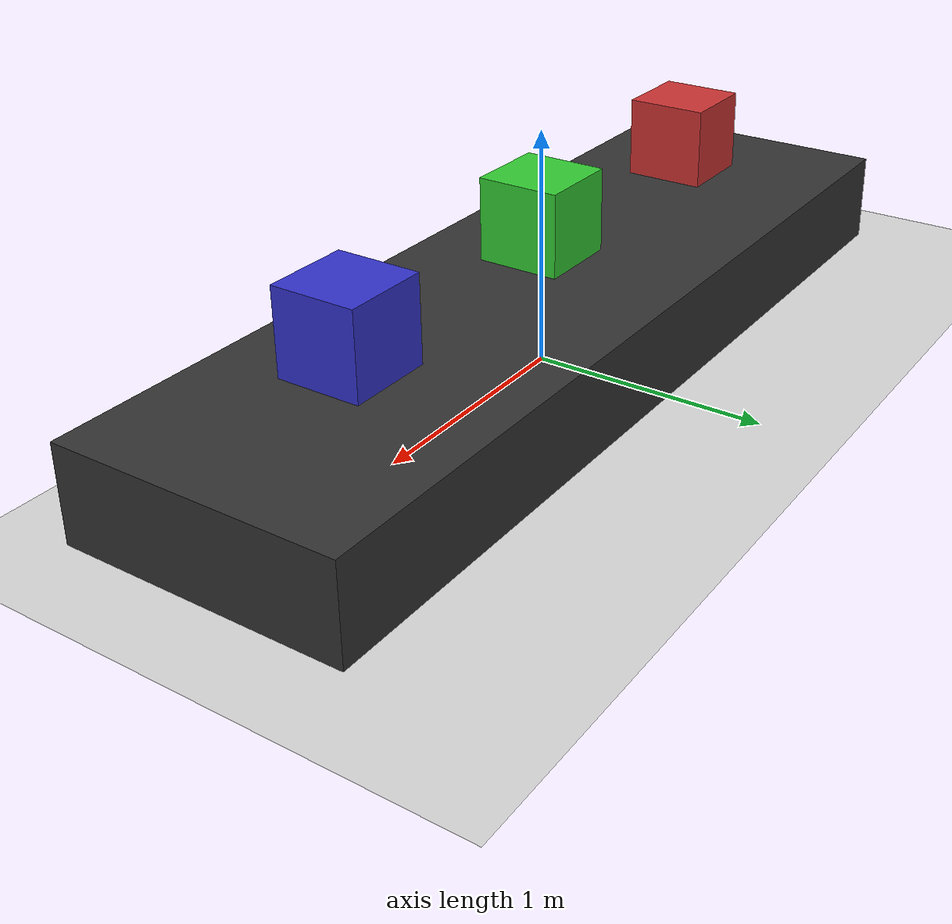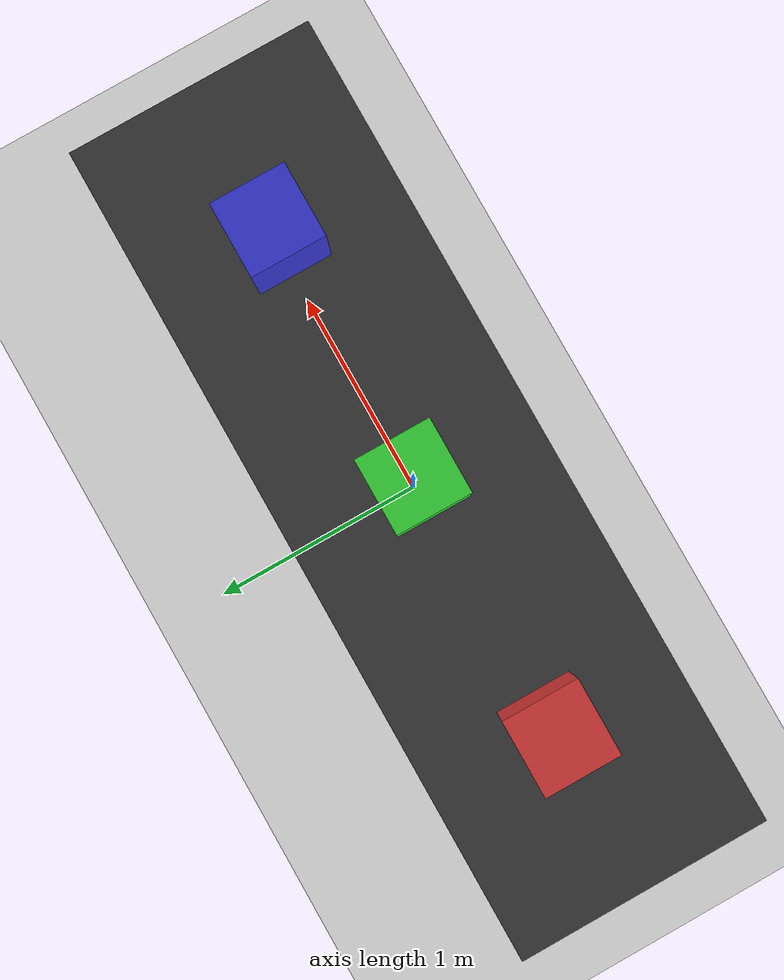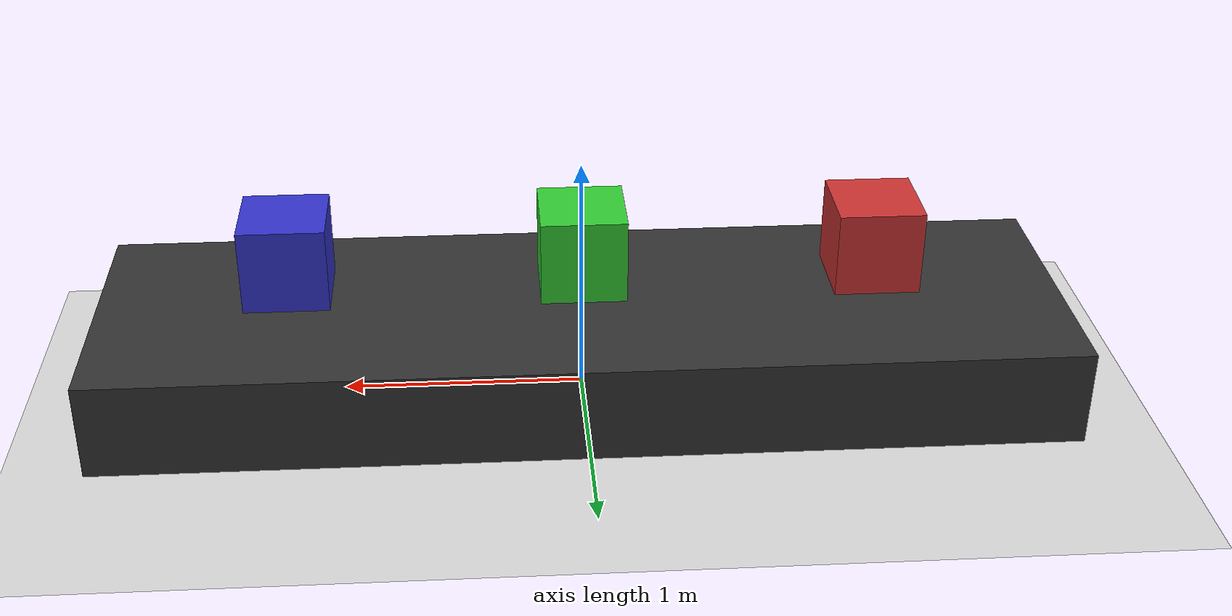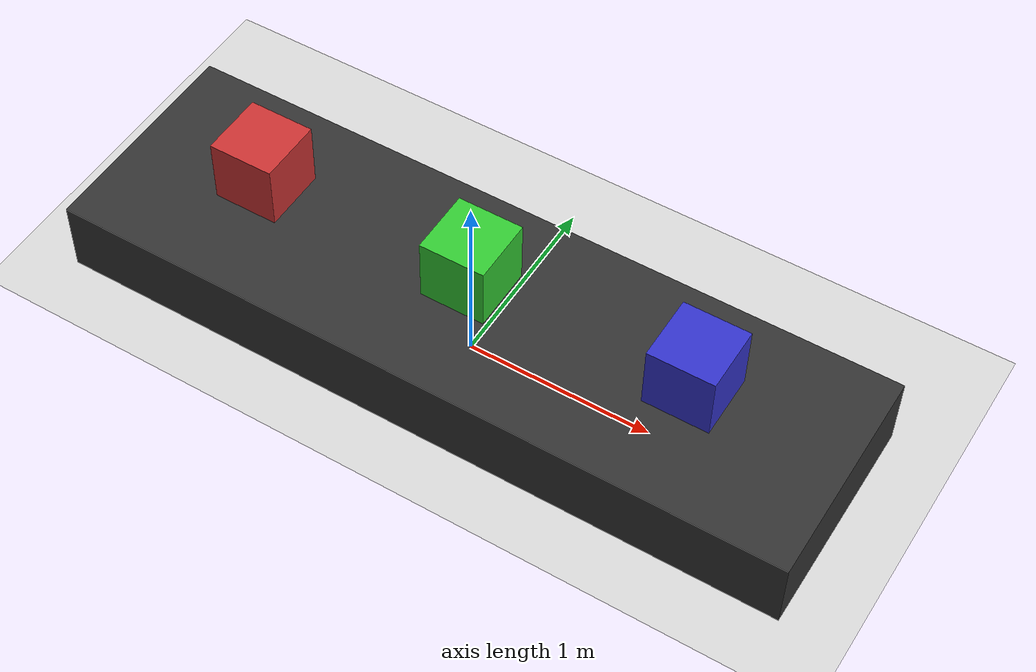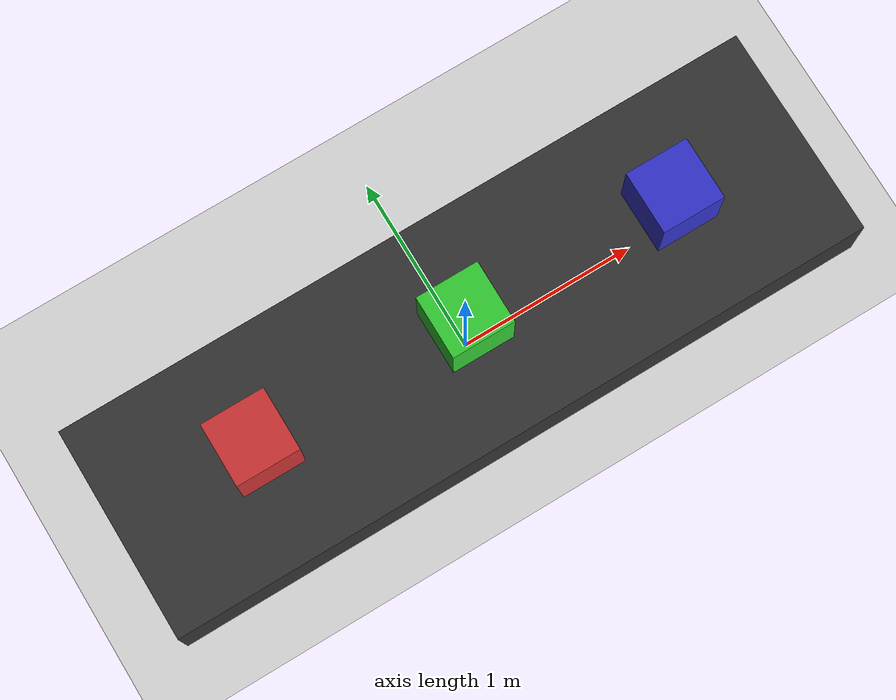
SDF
<?xml version="1.0" ?>
<sdf version="1.8">
  <world name="factory_world">
    <plugin filename="gz-sim-physics-system" name="gz::sim::systems::Physics"/>
    <plugin filename="gz-sim-scene-broadcaster-system" name="gz::sim::systems::SceneBroadcaster"/>
    <plugin filename="gz-sim-user-commands-system" name="gz::sim::systems::UserCommands"/>

    <light name="sun" type="directional">
      <pose>0 0 10 0 0 0</pose>
      <diffuse>0.9 0.9 0.9 1</diffuse>
      <specular>0.2 0.2 0.2 1</specular>
      <direction>-0.5 0.1 -0.9</direction>
    </light>

    <model name="ground_plane">
      <static>true</static>
      <link name="link">
        <collision name="collision">
          <geometry>
            <plane>
              <normal>0 0 1</normal>
              <size>20 20</size>
            </plane>
          </geometry>
        </collision>
        <visual name="visual">
          <geometry>
            <plane>
              <normal>0 0 1</normal>
              <size>20 20</size>
            </plane>
          </geometry>
          <material>
            <ambient>0.85 0.85 0.85 1</ambient>
            <diffuse>0.85 0.85 0.85 1</diffuse>
          </material>
        </visual>
      </link>
    </model>

    <model name="conveyor_platform">
      <static>true</static>
      <pose>0 0 0.2 0 0 0</pose>
      <link name="link">
        <collision name="collision">
          <geometry>
            <box>
              <size>4.0 1.2 0.4</size>
            </box>
          </geometry>
        </collision>
        <visual name="visual">
          <geometry>
            <box>
              <size>4.0 1.2 0.4</size>
            </box>
          </geometry>
          <material>
            <ambient>0.2 0.2 0.2 1</ambient>
            <diffuse>0.2 0.2 0.2 1</diffuse>
          </material>
        </visual>
      </link>
    </model>

    <model name="box_1">
      <static>false</static>
      <pose>-1.2 0 0.65 0 0 0</pose>
      <link name="link">
        <inertial>
          <mass>0.5</mass>
          <inertia>
            <ixx>0.02</ixx>
            <iyy>0.02</iyy>
            <izz>0.02</izz>
          </inertia>
        </inertial>
        <collision name="collision">
          <geometry>
            <box>
              <size>0.35 0.35 0.35</size>
            </box>
          </geometry>
        </collision>
        <visual name="visual">
          <geometry>
            <box>
              <size>0.35 0.35 0.35</size>
            </box>
          </geometry>
          <material>
            <ambient>0.8 0.2 0.2 1</ambient>
            <diffuse>0.8 0.2 0.2 1</diffuse>
          </material>
        </visual>
      </link>
    </model>

    <model name="box_2">
      <static>false</static>
      <pose>0.0 0 0.65 0 0 0</pose>
      <link name="link">
        <inertial>
          <mass>0.5</mass>
          <inertia>
            <ixx>0.02</ixx>
            <iyy>0.02</iyy>
            <izz>0.02</izz>
          </inertia>
        </inertial>
        <collision name="collision">
          <geometry>
            <box>
              <size>0.35 0.35 0.35</size>
            </box>
          </geometry>
        </collision>
        <visual name="visual">
          <geometry>
            <box>
              <size>0.35 0.35 0.35</size>
            </box>
          </geometry>
          <material>
            <ambient>0.2 0.8 0.2 1</ambient>
            <diffuse>0.2 0.8 0.2 1</diffuse>
          </material>
        </visual>
      </link>
    </model>

    <model name="box_3">
      <static>false</static>
      <pose>1.2 0 0.65 0 0 0</pose>
      <link name="link">
        <inertial>
          <mass>0.5</mass>
          <inertia>
            <ixx>0.02</ixx>
            <iyy>0.02</iyy>
            <izz>0.02</izz>
          </inertia>
        </inertial>
        <collision name="collision">
          <geometry>
            <box>
              <size>0.35 0.35 0.35</size>
            </box>
          </geometry>
        </collision>
        <visual name="visual">
          <geometry>
            <box>
              <size>0.35 0.35 0.35</size>
            </box>
          </geometry>
          <material>
            <ambient>0.2 0.2 0.8 1</ambient>
            <diffuse>0.2 0.2 0.8 1</diffuse>
          </material>
        </visual>
      </link>
    </model>
    <plugin filename="gz-sim-sensors-system" name="gz::sim::systems::Sensors">
      <render_engine>ogre</render_engine>
    </plugin>

    <model name="overhead_camera">
      <static>true</static>
      <pose>0 0 3.5 0 1.5708 0</pose>
      <link name="camera_link">
        <sensor name="rgb_camera" type="camera">
          <always_on>true</always_on>
          <update_rate>10</update_rate>
          <visualize>true</visualize>
          <topic>/overhead_camera/image</topic>
          <camera>
            <horizontal_fov>1.047</horizontal_fov>
            <image>
              <width>640</width>
              <height>480</height>
              <format>R8G8B8</format>
            </image>
            <clip>
              <near>0.05</near>
              <far>20</far>
            </clip>
          </camera>
        </sensor>
      </link>
    </model>

  </world>
</sdf>
